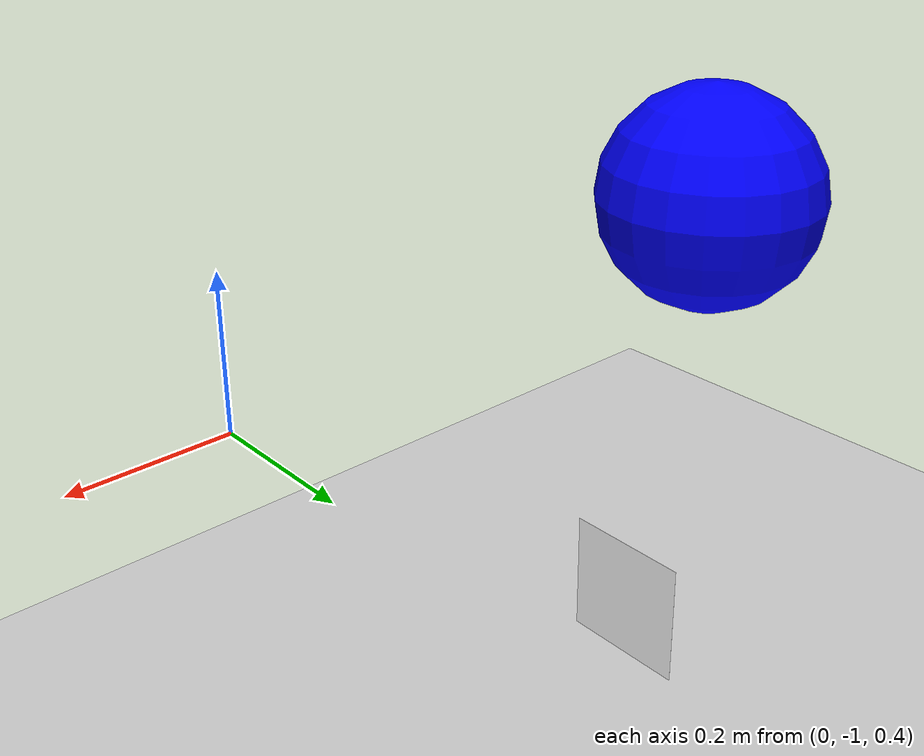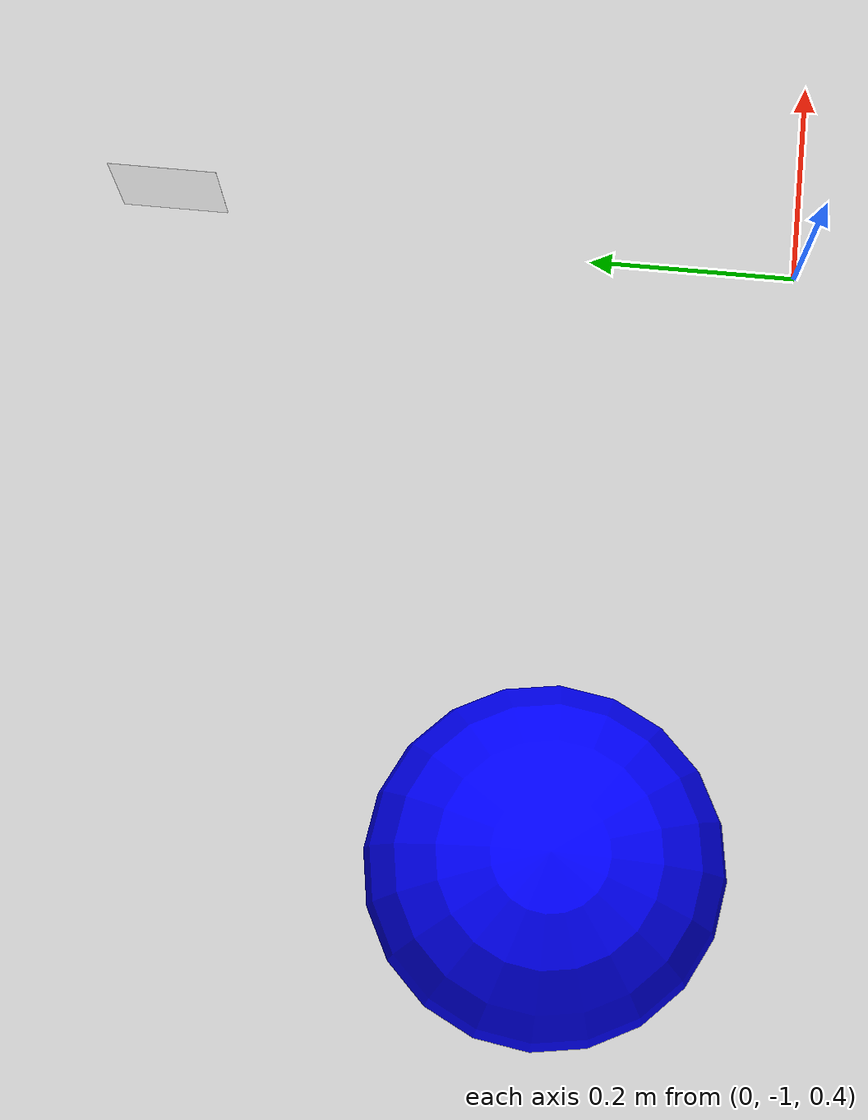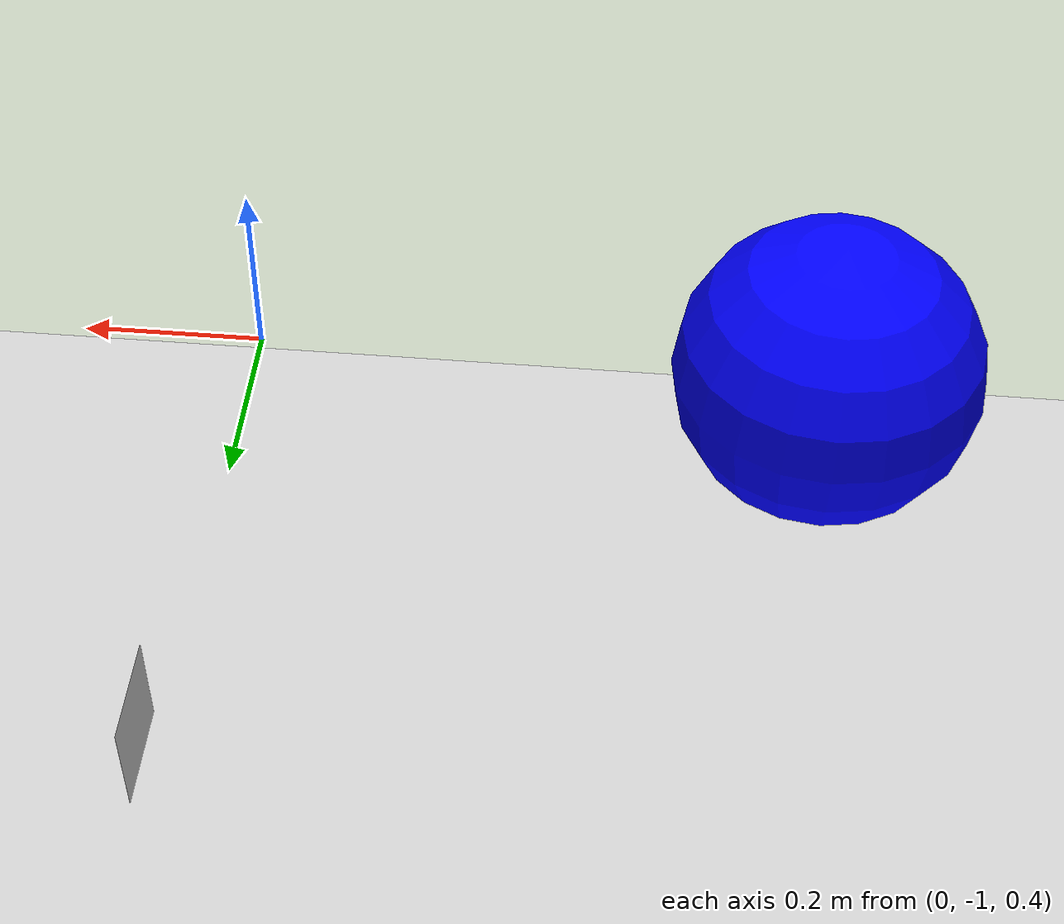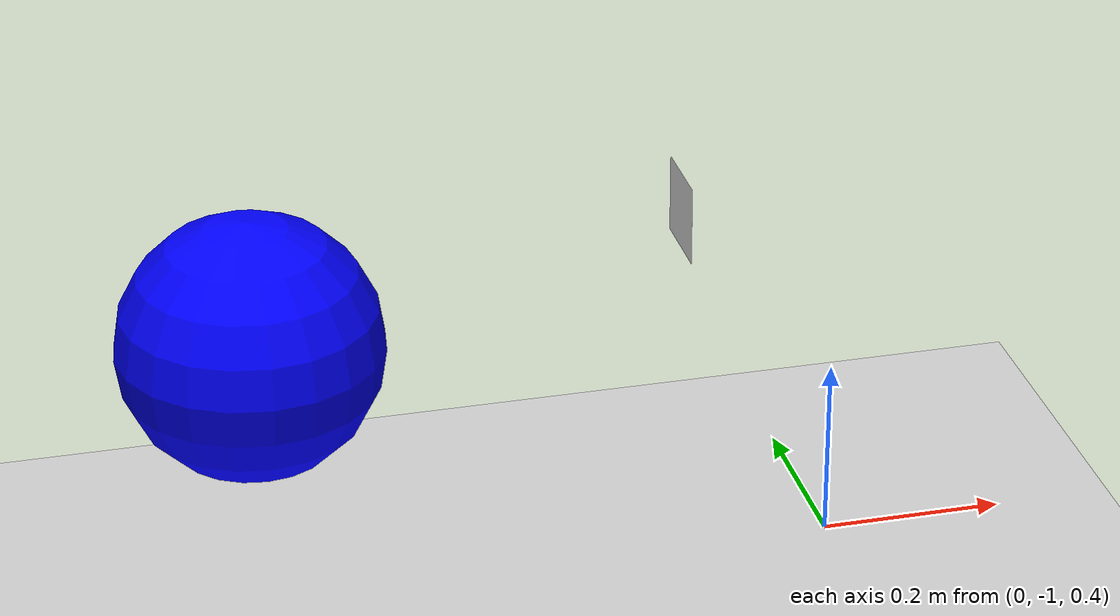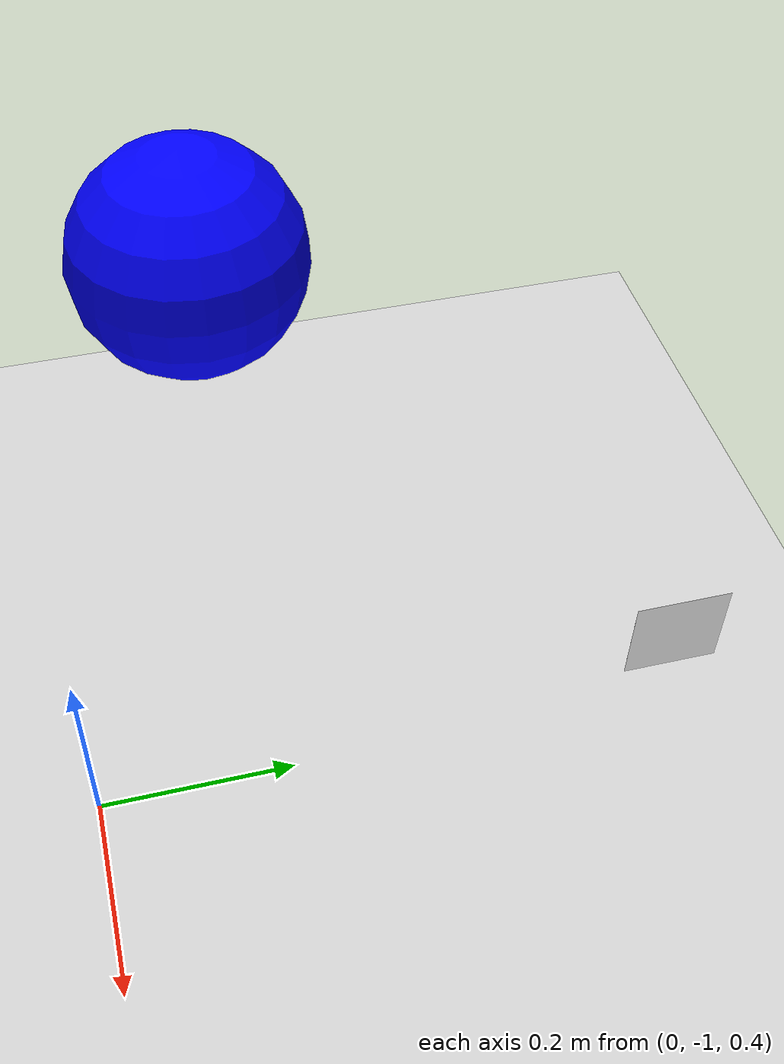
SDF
<?xml version="1.0" ?>
<sdf version="1.4">
  <!-- We use a custom world for the rrbot so that the camera angle is launched correctly -->

  <world name="default">
    <!-- Included light -->
    <include>
      <uri>https://fuel.gazebosim.org/1.0/OpenRobotics/models/Sun</uri>
    </include>

    <!-- Included model -->
    <include>
      <uri>https://fuel.gazebosim.org/1.0/OpenRobotics/models/Ground Plane</uri>
    </include>

    <include>
      <uri>
        model://spherical_object
      </uri>
      <name>spherical_object</name>
      <pose>-0.6 -0.8 0.6 0 0 0</pose>
    </include>

    <include>
      <uri>
        model://arucotag
      </uri>
      <name>arucotag</name>
      <pose>0 -0.4 0.5 0 1.57 0</pose>
    </include>

    <gravity>0 0 0</gravity>

    <!-- Focus camera on tall pendulum -->
    <gui fullscreen='0'>
      <camera name='user_camera'>
        <pose>4.927360 -4.376610 3.740080 0.000000 0.275643 2.356190</pose>
        <view_controller>orbit</view_controller>
      </camera>
    </gui>

    <!-- World control -->

  </world>
</sdf>

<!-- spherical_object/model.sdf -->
<sdf version='1.4'>
  <model name='spherical_object'>
    <static>true</static>
    <pose>-1 -0.6 0.6 0 0 0</pose>
    <link name='base'>
      <visual name='base_visual'>
        <geometry>
          <sphere>
            <radius>0.15</radius>
          </sphere>
        </geometry>
        <material>
          <diffuse>0 0 1 1</diffuse>
          <specular>0.4 0.4 0.4 1</specular>
        </material>
      </visual>
    </link>
  </model>
</sdf>

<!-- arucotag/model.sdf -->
<sdf version='1.4'>
  <model name='arucotag'>
    <static>true</static>
    <pose>0 0 0.001 0 0 0</pose>
    <link name='base'>
      <visual name='base_visual'>
        <geometry>
          <plane>
            <normal>0 0 1</normal>
            <size>0.1 0.1</size>
          </plane>
        </geometry>
        <material>
          <diffuse>1 1 1 1</diffuse>
          <specular>0.4 0.4 0.4 1</specular>
          <pbr>
            <metal>
              <albedo_map>model://arucotag/aruco-201.png</albedo_map>
            </metal>
          </pbr>
        </material>
      </visual>
    </link>
  </model>
</sdf>
